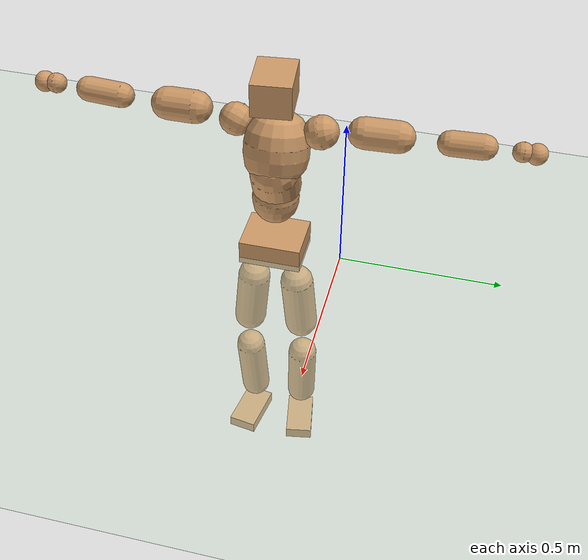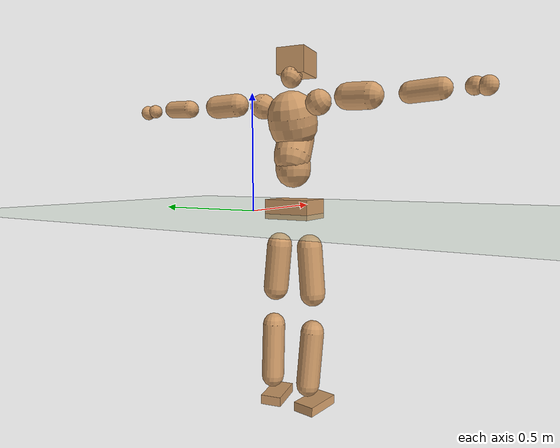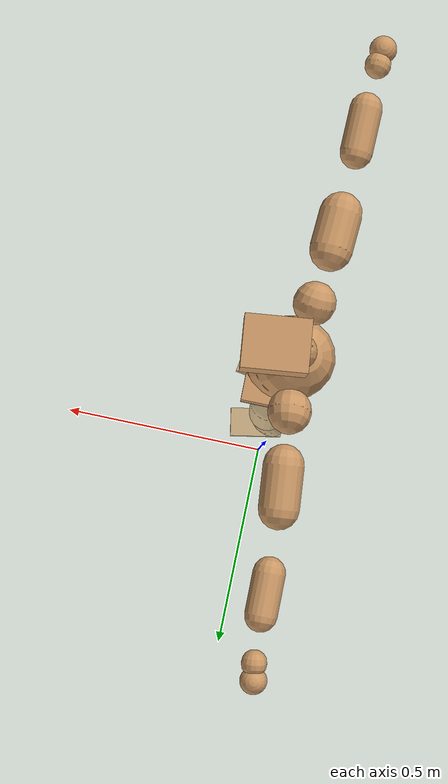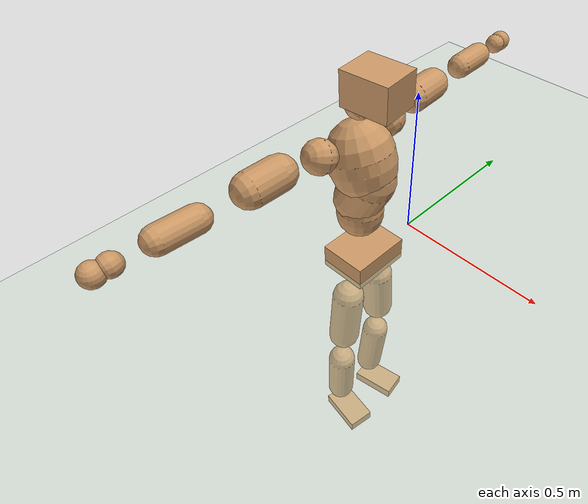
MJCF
<mujoco model="humanoid">
  <compiler coordinate="local" angle="radian"/>
  <default>
    <joint damping="0.0" armature="0.01" stiffness="0.0" limited="true"/>
    <geom conaffinity="1" condim="3" contype="7" margin="0.001" rgba="0.8 0.6 .4 1"/>
  </default>
  <asset>
    <texture type="skybox" builtin="gradient" rgb1=".4 .5 .6" rgb2="0 0 0" width="100" height="100"/>
    <texture builtin="flat" height="1278" mark="cross" markrgb="1 1 1" name="texgeom" random="0.01" rgb1="0.8 0.6 0.4" rgb2="0.8 0.6 0.4" type="cube" width="127"/>
    <texture builtin="checker" height="100" name="texplane" rgb1="0 0 0" rgb2="0.8 0.8 0.8" type="2d" width="100"/>
    <material name="MatPlane" reflectance="0.5" shininess="1" specular="1" texrepeat="60 60" texture="texplane"/>
    <material name="geom" texture="texgeom" texuniform="true"/>
  </asset>
  <worldbody>
    <light cutoff="100" diffuse="1 1 1" dir="-0 0 -1.3" directional="true" exponent="1" pos="0 0 1.3" specular=".1 .1 .1"/>
    <geom conaffinity="1" condim="3" name="floor" pos="0 0 0" rgba="0.8 0.9 0.8 1" size="100 100 .2" type="plane" material="MatPlane"/>
    <body name="Pelvis" pos="-0.0006 -0.2112 0.0291">
      <freejoint name="Pelvis"/>
      <geom type="box" contype="1" conaffinity="1" density="5359.374802" pos="-0.0050 -0.0000 -0.0121" size="0.0768 0.0964 0.04" quat="1.0000 0.0000 0.0000 0.0031" name="Pelvis"/>
      <body name="L_Hip" pos="-0.0066 0.0645 -0.0858">
        <joint name="L_Hip_x" type="hinge" pos="0 0 0" axis="1 0 0" stiffness="1600" damping="160" armature="0.02" range="-180.0000 180.0000"/>
        <joint name="L_Hip_y" type="hinge" pos="0 0 0" axis="0 1 0" stiffness="1600" damping="160" armature="0.02" range="-180.0000 180.0000"/>
        <joint name="L_Hip_z" type="hinge" pos="0 0 0" axis="0 0 1" stiffness="1600" damping="160" armature="0.02" range="-180.0000 180.0000"/>
        <geom type="capsule" contype="1" conaffinity="1" density="2040.816327" size="0.0527" fromto="-0.0022 0.0068 -0.0824 -0.0070 0.0223 -0.2681" name="L_Hip"/>
        <body name="L_Knee" pos="-0.0092 0.0291 -0.3505">
          <joint name="L_Knee_x" type="hinge" pos="0 0 0" axis="1 0 0" stiffness="1600" damping="160" armature="0.02" range="-180.0000 180.0000"/>
          <joint name="L_Knee_y" type="hinge" pos="0 0 0" axis="0 1 0" stiffness="1600" damping="160" armature="0.02" range="-180.0000 180.0000"/>
          <joint name="L_Knee_z" type="hinge" pos="0 0 0" axis="0 0 1" stiffness="1600" damping="160" armature="0.02" range="-180.0000 180.0000"/>
          <geom type="capsule" contype="1" conaffinity="1" density="1234.567901" size="0.0476" fromto="-0.0077 -0.0025 -0.0771 -0.0300 -0.0099 -0.2988" name="L_Knee"/>
          <body name="L_Ankle" pos="-0.0378 -0.0124 -0.376">
            <joint name="L_Ankle_x" type="hinge" pos="0 0 0" axis="1 0 0" stiffness="1600" damping="160" armature="0.02" range="-180.0000 180.0000"/>
            <joint name="L_Ankle_y" type="hinge" pos="0 0 0" axis="0 1 0" stiffness="1600" damping="160" armature="0.02" range="-180.0000 180.0000"/>
            <joint name="L_Ankle_z" type="hinge" pos="0 0 0" axis="0 0 1" stiffness="1600" damping="160" armature="0.02" range="-180.0000 180.0000"/>
            <geom type="box" contype="1" conaffinity="1" density="999.999915" pos="0.0564 0.0103 -0.0273" size="0.0795 0.044 0.02" quat="0.9959 0.0000 0.0000 0.0903" name="L_Ankle"/>
            <body name="L_Toe" pos="0.1128 0.0206 -0.0547">
              <joint name="L_Toe_x" type="hinge" pos="0 0 0" axis="1 0 0" stiffness="1000" damping="100" armature="0.02" range="-180.0000 180.0000"/>
              <joint name="L_Toe_y" type="hinge" pos="0 0 0" axis="0 1 0" stiffness="1000" damping="100" armature="0.02" range="-180.0000 180.0000"/>
              <joint name="L_Toe_z" type="hinge" pos="0 0 0" axis="0 0 1" stiffness="1000" damping="100" armature="0.02" range="-180.0000 180.0000"/>
              <geom type="box" contype="1" conaffinity="1" density="8268162.516083" pos="0.0000 0.0000 0.0272" size="0.0009 0.0022 0.001" quat="0.9953 0.0000 0.0000 0.0971" name="L_Toe"/>
            </body>
          </body>
        </body>
      </body>
      <body name="R_Hip" pos="-0.0027 -0.0623 -0.0858">
        <joint name="R_Hip_x" type="hinge" pos="0 0 0" axis="1 0 0" stiffness="1600" damping="160" armature="0.02" range="-180.0000 180.0000"/>
        <joint name="R_Hip_y" type="hinge" pos="0 0 0" axis="0 1 0" stiffness="1600" damping="160" armature="0.02" range="-180.0000 180.0000"/>
        <joint name="R_Hip_z" type="hinge" pos="0 0 0" axis="0 0 1" stiffness="1600" damping="160" armature="0.02" range="-180.0000 180.0000"/>
        <geom type="capsule" contype="1" conaffinity="1" density="2040.816327" size="0.0521" fromto="-0.0024 -0.0080 -0.0817 -0.0081 -0.0268 -0.2750" name="R_Hip"/>
        <body name="R_Knee" pos="-0.0105 -0.0348 -0.3567">
          <joint name="R_Knee_x" type="hinge" pos="0 0 0" axis="1 0 0" stiffness="1600" damping="160" armature="0.02" range="-180.0000 180.0000"/>
          <joint name="R_Knee_y" type="hinge" pos="0 0 0" axis="0 1 0" stiffness="1600" damping="160" armature="0.02" range="-180.0000 180.0000"/>
          <joint name="R_Knee_z" type="hinge" pos="0 0 0" axis="0 0 1" stiffness="1600" damping="160" armature="0.02" range="-180.0000 180.0000"/>
          <geom type="capsule" contype="1" conaffinity="1" density="1234.567901" size="0.0481" fromto="-0.0074 0.0032 -0.0777 -0.0284 0.0123 -0.2996" name="R_Knee"/>
          <body name="R_Ankle" pos="-0.0357 0.0155 -0.3772">
            <joint name="R_Ankle_x" type="hinge" pos="0 0 0" axis="1 0 0" stiffness="1600" damping="160" armature="0.02" range="-180.0000 180.0000"/>
            <joint name="R_Ankle_y" type="hinge" pos="0 0 0" axis="0 1 0" stiffness="1600" damping="160" armature="0.02" range="-180.0000 180.0000"/>
            <joint name="R_Ankle_z" type="hinge" pos="0 0 0" axis="0 0 1" stiffness="1600" damping="160" armature="0.02" range="-180.0000 180.0000"/>
            <geom type="box" contype="1" conaffinity="1" density="999.999923" pos="0.0584 -0.0090 -0.0225" size="0.0818 0.0463 0.0194" quat="0.9971 0.0000 0.0000 -0.0761" name="R_Ankle"/>
            <body name="R_Toe" pos="0.1167 -0.0179 -0.0451">
              <joint name="R_Toe_x" type="hinge" pos="0 0 0" axis="1 0 0" stiffness="1000" damping="100" armature="0.02" range="-180.0000 180.0000"/>
              <joint name="R_Toe_y" type="hinge" pos="0 0 0" axis="0 1 0" stiffness="1000" damping="100" armature="0.02" range="-180.0000 180.0000"/>
              <joint name="R_Toe_z" type="hinge" pos="0 0 0" axis="0 0 1" stiffness="1000" damping="100" armature="0.02" range="-180.0000 180.0000"/>
              <geom type="box" contype="1" conaffinity="1" density="7970938.676804" pos="0.0000 0.0000 0.0247" size="0.0009 0.0023 0.0011" quat="0.9978 0.0000 0.0000 -0.0666" name="R_Toe"/>
            </body>
          </body>
        </body>
      </body>
      <body name="Torso" pos="-0.0207 -0.0024 0.0988">
        <joint name="Torso_x" type="hinge" pos="0 0 0" axis="1 0 0" stiffness="2000" damping="200" armature="0.02" range="-180.0000 180.0000"/>
        <joint name="Torso_y" type="hinge" pos="0 0 0" axis="0 1 0" stiffness="2000" damping="200" armature="0.02" range="-180.0000 180.0000"/>
        <joint name="Torso_z" type="hinge" pos="0 0 0" axis="0 0 1" stiffness="2000" damping="200" armature="0.02" range="-180.0000 180.0000"/>
        <geom type="capsule" contype="1" conaffinity="1" density="2040.816327" size="0.0718" fromto="0.0013 0.0020 0.0717 0.0009 0.0013 0.0484" name="Torso"/>
        <body name="Spine" pos="0.0023 0.0033 0.1202">
          <joint name="Spine_x" type="hinge" pos="0 0 0" axis="1 0 0" stiffness="2000" damping="200" armature="0.02" range="-180.0000 180.0000"/>
          <joint name="Spine_y" type="hinge" pos="0 0 0" axis="0 1 0" stiffness="2000" damping="200" armature="0.02" range="-180.0000 180.0000"/>
          <joint name="Spine_z" type="hinge" pos="0 0 0" axis="0 0 1" stiffness="2000" damping="200" armature="0.02" range="-180.0000 180.0000"/>
          <geom type="capsule" contype="1" conaffinity="1" density="2040.816327" size="0.0756" fromto="0.0339 0.0038 0.0675 -0.0090 -0.0010 -0.0179" name="Spine"/>
          <body name="Chest" pos="0.0249 0.0028 0.0496">
            <joint name="Chest_x" type="hinge" pos="0 0 0" axis="1 0 0" stiffness="2000" damping="200" armature="0.02" range="-180.0000 180.0000"/>
            <joint name="Chest_y" type="hinge" pos="0 0 0" axis="0 1 0" stiffness="2000" damping="200" armature="0.02" range="-180.0000 180.0000"/>
            <joint name="Chest_z" type="hinge" pos="0 0 0" axis="0 0 1" stiffness="2000" damping="200" armature="0.02" range="-180.0000 180.0000"/>
            <geom type="capsule" contype="1" conaffinity="1" density="2040.816327" size="0.0995" fromto="-0.0305 -0.0007 0.0947 -0.0189 -0.0004 0.0585" name="Chest"/>
            <body name="Neck" pos="-0.0587 -0.0013 0.2161">
              <joint name="Neck_x" type="hinge" pos="0 0 0" axis="1 0 0" stiffness="1000" damping="100" armature="0.02" range="-180.0000 180.0000"/>
              <joint name="Neck_y" type="hinge" pos="0 0 0" axis="0 1 0" stiffness="1000" damping="100" armature="0.02" range="-180.0000 180.0000"/>
              <joint name="Neck_z" type="hinge" pos="0 0 0" axis="0 0 1" stiffness="1000" damping="100" armature="0.02" range="-180.0000 180.0000"/>
              <geom type="capsule" contype="1" conaffinity="1" density="1000" size="0.0424" fromto="0.0271 0.0021 0.0326 0.0245 0.0019 0.0296" name="Neck"/>
              <body name="Head" pos="0.0516 0.004 0.0622">
                <joint name="Head_x" type="hinge" pos="0 0 0" axis="1 0 0" stiffness="1000" damping="100" armature="0.02" range="-180.0000 180.0000"/>
                <joint name="Head_y" type="hinge" pos="0 0 0" axis="0 1 0" stiffness="1000" damping="100" armature="0.02" range="-180.0000 180.0000"/>
                <joint name="Head_z" type="hinge" pos="0 0 0" axis="0 0 1" stiffness="1000" damping="100" armature="0.02" range="-180.0000 180.0000"/>
                <geom type="box" contype="1" conaffinity="1" density="2249.999949" pos="0.0268 0.0030 0.0321" size="0.0736 0.059 0.0516" quat="0.9984 0.0000 0.0000 0.0557" name="Head"/>
              </body>
            </body>
            <body name="L_Thorax" pos="-0.0427 0.0807 0.1233">
              <joint name="L_Thorax_x" type="hinge" pos="0 0 0" axis="1 0 0" stiffness="1000" damping="100" armature="0.02" range="-180.0000 180.0000"/>
              <joint name="L_Thorax_y" type="hinge" pos="0 0 0" axis="0 1 0" stiffness="1000" damping="100" armature="0.02" range="-180.0000 180.0000"/>
              <joint name="L_Thorax_z" type="hinge" pos="0 0 0" axis="0 0 1" stiffness="1000" damping="100" armature="0.02" range="-180.0000 180.0000"/>
              <geom type="capsule" contype="1" conaffinity="1" density="1000" size="0.0508" fromto="-0.0039 0.0481 0.0157 -0.0035 0.0433 0.0141" name="L_Thorax"/>
              <body name="L_Shoulder" pos="-0.0075 0.0914 0.0298">
                <joint name="L_Shoulder_x" type="hinge" pos="0 0 0" axis="1 0 0" stiffness="1000" damping="100" armature="0.02" range="-720.0000 720.0000"/>
                <joint name="L_Shoulder_y" type="hinge" pos="0 0 0" axis="0 1 0" stiffness="1000" damping="100" armature="0.02" range="-720.0000 720.0000"/>
                <joint name="L_Shoulder_z" type="hinge" pos="0 0 0" axis="0 0 1" stiffness="1000" damping="100" armature="0.02" range="-720.0000 720.0000"/>
                <geom type="capsule" contype="1" conaffinity="1" density="1000" size="0.0477" fromto="-0.0072 0.0773 -0.0024 -0.0166 0.1776 -0.0055" name="L_Shoulder"/>
                <body name="L_Elbow" pos="-0.0238 0.2549 -0.0079">
                  <joint name="L_Elbow_x" type="hinge" pos="0 0 0" axis="1 0 0" stiffness="1000" damping="100" armature="0.02" range="-720.0000 720.0000"/>
                  <joint name="L_Elbow_y" type="hinge" pos="0 0 0" axis="0 1 0" stiffness="1000" damping="100" armature="0.02" range="-720.0000 720.0000"/>
                  <joint name="L_Elbow_z" type="hinge" pos="0 0 0" axis="0 0 1" stiffness="1000" damping="100" armature="0.02" range="-720.0000 720.0000"/>
                  <geom type="capsule" contype="1" conaffinity="1" density="1000" size="0.0374" fromto="-0.0004 0.0674 0.0024 -0.0010 0.1644 0.0058" name="L_Elbow"/>
                  <body name="L_Wrist" pos="-0.0014 0.2318 0.0081">
                    <joint name="L_Wrist_x" type="hinge" pos="0 0 0" axis="1 0 0" stiffness="600" damping="60" armature="0.02" range="-180.0000 180.0000"/>
                    <joint name="L_Wrist_y" type="hinge" pos="0 0 0" axis="0 1 0" stiffness="600" damping="60" armature="0.02" range="-180.0000 180.0000"/>
                    <joint name="L_Wrist_z" type="hinge" pos="0 0 0" axis="0 0 1" stiffness="600" damping="60" armature="0.02" range="-180.0000 180.0000"/>
                    <geom type="capsule" contype="1" conaffinity="1" density="1000" size="0.0295" fromto="-0.0062 0.0379 -0.0045 -0.0065 0.0399 -0.0047" name="L_Wrist"/>
                    <body name="L_Hand" pos="-0.0128 0.0778 -0.0092">
                      <joint name="L_Hand_x" type="hinge" pos="0 0 0" axis="1 0 0" stiffness="600" damping="60" armature="0.02" range="-180.0000 180.0000"/>
                      <joint name="L_Hand_y" type="hinge" pos="0 0 0" axis="0 1 0" stiffness="600" damping="60" armature="0.02" range="-180.0000 180.0000"/>
                      <joint name="L_Hand_z" type="hinge" pos="0 0 0" axis="0 0 1" stiffness="600" damping="60" armature="0.02" range="-180.0000 180.0000"/>
                      <geom type="sphere" contype="1" conaffinity="1" density="1000" size="0.0313" pos="0.0000 0.0000 0.0000" name="L_Hand"/>
                    </body>
                  </body>
                </body>
              </body>
            </body>
            <body name="R_Thorax" pos="-0.0468 -0.083 0.1202">
              <joint name="R_Thorax_x" type="hinge" pos="0 0 0" axis="1 0 0" stiffness="1000" damping="100" armature="0.02" range="-180.0000 180.0000"/>
              <joint name="R_Thorax_y" type="hinge" pos="0 0 0" axis="0 1 0" stiffness="1000" damping="100" armature="0.02" range="-180.0000 180.0000"/>
              <joint name="R_Thorax_z" type="hinge" pos="0 0 0" axis="0 0 1" stiffness="1000" damping="100" armature="0.02" range="-180.0000 180.0000"/>
              <geom type="capsule" contype="1" conaffinity="1" density="1000" size="0.0502" fromto="-0.0061 -0.0464 0.0161 -0.0063 -0.0482 0.0168" name="R_Thorax"/>
              <body name="R_Shoulder" pos="-0.0124 -0.0946 0.0329">
                <joint name="R_Shoulder_x" type="hinge" pos="0 0 0" axis="1 0 0" stiffness="1000" damping="100" armature="0.02" range="-720.0000 720.0000"/>
                <joint name="R_Shoulder_y" type="hinge" pos="0 0 0" axis="0 1 0" stiffness="1000" damping="100" armature="0.02" range="-720.0000 720.0000"/>
                <joint name="R_Shoulder_z" type="hinge" pos="0 0 0" axis="0 0 1" stiffness="1000" damping="100" armature="0.02" range="-720.0000 720.0000"/>
                <geom type="capsule" contype="1" conaffinity="1" density="1000" size="0.0502" fromto="-0.0052 -0.0799 -0.0043 -0.0110 -0.1695 -0.0092" name="R_Shoulder"/>
                <body name="R_Elbow" pos="-0.0161 -0.2493 -0.0135">
                  <joint name="R_Elbow_x" type="hinge" pos="0 0 0" axis="1 0 0" stiffness="1000" damping="100" armature="0.02" range="-720.0000 720.0000"/>
                  <joint name="R_Elbow_y" type="hinge" pos="0 0 0" axis="0 1 0" stiffness="1000" damping="100" armature="0.02" range="-720.0000 720.0000"/>
                  <joint name="R_Elbow_z" type="hinge" pos="0 0 0" axis="0 0 1" stiffness="1000" damping="100" armature="0.02" range="-720.0000 720.0000"/>
                  <geom type="capsule" contype="1" conaffinity="1" density="1000" size="0.0382" fromto="-0.0014 -0.0682 0.0026 -0.0036 -0.1745 0.0066" name="R_Elbow"/>
                  <body name="R_Wrist" pos="-0.0051 -0.2426 0.0091">
                    <joint name="R_Wrist_x" type="hinge" pos="0 0 0" axis="1 0 0" stiffness="600" damping="60" armature="0.02" range="-180.0000 180.0000"/>
                    <joint name="R_Wrist_y" type="hinge" pos="0 0 0" axis="0 1 0" stiffness="600" damping="60" armature="0.02" range="-180.0000 180.0000"/>
                    <joint name="R_Wrist_z" type="hinge" pos="0 0 0" axis="0 0 1" stiffness="600" damping="60" armature="0.02" range="-180.0000 180.0000"/>
                    <geom type="capsule" contype="1" conaffinity="1" density="1000" size="0.0308" fromto="-0.0050 -0.0392 -0.0035 -0.0052 -0.0412 -0.0037" name="R_Wrist"/>
                    <body name="R_Hand" pos="-0.0102 -0.0804 -0.0072">
                      <joint name="R_Hand_x" type="hinge" pos="0 0 0" axis="1 0 0" stiffness="600" damping="60" armature="0.02" range="-180.0000 180.0000"/>
                      <joint name="R_Hand_y" type="hinge" pos="0 0 0" axis="0 1 0" stiffness="600" damping="60" armature="0.02" range="-180.0000 180.0000"/>
                      <joint name="R_Hand_z" type="hinge" pos="0 0 0" axis="0 0 1" stiffness="600" damping="60" armature="0.02" range="-180.0000 180.0000"/>
                      <geom type="sphere" contype="1" conaffinity="1" density="1000" size="0.0323" pos="0.0000 0.0000 0.0000" name="R_Hand"/>
                    </body>
                  </body>
                </body>
              </body>
            </body>
          </body>
        </body>
      </body>
    </body>
  </worldbody>
  <actuator>
    <motor name="L_Hip_x" joint="L_Hip_x" gear="500"/>
    <motor name="L_Hip_y" joint="L_Hip_y" gear="500"/>
    <motor name="L_Hip_z" joint="L_Hip_z" gear="500"/>
    <motor name="L_Knee_x" joint="L_Knee_x" gear="500"/>
    <motor name="L_Knee_y" joint="L_Knee_y" gear="500"/>
    <motor name="L_Knee_z" joint="L_Knee_z" gear="500"/>
    <motor name="L_Ankle_x" joint="L_Ankle_x" gear="500"/>
    <motor name="L_Ankle_y" joint="L_Ankle_y" gear="500"/>
    <motor name="L_Ankle_z" joint="L_Ankle_z" gear="500"/>
    <motor name="L_Toe_x" joint="L_Toe_x" gear="500"/>
    <motor name="L_Toe_y" joint="L_Toe_y" gear="500"/>
    <motor name="L_Toe_z" joint="L_Toe_z" gear="500"/>
    <motor name="R_Hip_x" joint="R_Hip_x" gear="500"/>
    <motor name="R_Hip_y" joint="R_Hip_y" gear="500"/>
    <motor name="R_Hip_z" joint="R_Hip_z" gear="500"/>
    <motor name="R_Knee_x" joint="R_Knee_x" gear="500"/>
    <motor name="R_Knee_y" joint="R_Knee_y" gear="500"/>
    <motor name="R_Knee_z" joint="R_Knee_z" gear="500"/>
    <motor name="R_Ankle_x" joint="R_Ankle_x" gear="500"/>
    <motor name="R_Ankle_y" joint="R_Ankle_y" gear="500"/>
    <motor name="R_Ankle_z" joint="R_Ankle_z" gear="500"/>
    <motor name="R_Toe_x" joint="R_Toe_x" gear="500"/>
    <motor name="R_Toe_y" joint="R_Toe_y" gear="500"/>
    <motor name="R_Toe_z" joint="R_Toe_z" gear="500"/>
    <motor name="Torso_x" joint="Torso_x" gear="500"/>
    <motor name="Torso_y" joint="Torso_y" gear="500"/>
    <motor name="Torso_z" joint="Torso_z" gear="500"/>
    <motor name="Spine_x" joint="Spine_x" gear="500"/>
    <motor name="Spine_y" joint="Spine_y" gear="500"/>
    <motor name="Spine_z" joint="Spine_z" gear="500"/>
    <motor name="Chest_x" joint="Chest_x" gear="500"/>
    <motor name="Chest_y" joint="Chest_y" gear="500"/>
    <motor name="Chest_z" joint="Chest_z" gear="500"/>
    <motor name="Neck_x" joint="Neck_x" gear="500"/>
    <motor name="Neck_y" joint="Neck_y" gear="500"/>
    <motor name="Neck_z" joint="Neck_z" gear="500"/>
    <motor name="Head_x" joint="Head_x" gear="500"/>
    <motor name="Head_y" joint="Head_y" gear="500"/>
    <motor name="Head_z" joint="Head_z" gear="500"/>
    <motor name="L_Thorax_x" joint="L_Thorax_x" gear="500"/>
    <motor name="L_Thorax_y" joint="L_Thorax_y" gear="500"/>
    <motor name="L_Thorax_z" joint="L_Thorax_z" gear="500"/>
    <motor name="L_Shoulder_x" joint="L_Shoulder_x" gear="500"/>
    <motor name="L_Shoulder_y" joint="L_Shoulder_y" gear="500"/>
    <motor name="L_Shoulder_z" joint="L_Shoulder_z" gear="500"/>
    <motor name="L_Elbow_x" joint="L_Elbow_x" gear="500"/>
    <motor name="L_Elbow_y" joint="L_Elbow_y" gear="500"/>
    <motor name="L_Elbow_z" joint="L_Elbow_z" gear="500"/>
    <motor name="L_Wrist_x" joint="L_Wrist_x" gear="500"/>
    <motor name="L_Wrist_y" joint="L_Wrist_y" gear="500"/>
    <motor name="L_Wrist_z" joint="L_Wrist_z" gear="500"/>
    <motor name="L_Hand_x" joint="L_Hand_x" gear="500"/>
    <motor name="L_Hand_y" joint="L_Hand_y" gear="500"/>
    <motor name="L_Hand_z" joint="L_Hand_z" gear="500"/>
    <motor name="R_Thorax_x" joint="R_Thorax_x" gear="500"/>
    <motor name="R_Thorax_y" joint="R_Thorax_y" gear="500"/>
    <motor name="R_Thorax_z" joint="R_Thorax_z" gear="500"/>
    <motor name="R_Shoulder_x" joint="R_Shoulder_x" gear="500"/>
    <motor name="R_Shoulder_y" joint="R_Shoulder_y" gear="500"/>
    <motor name="R_Shoulder_z" joint="R_Shoulder_z" gear="500"/>
    <motor name="R_Elbow_x" joint="R_Elbow_x" gear="500"/>
    <motor name="R_Elbow_y" joint="R_Elbow_y" gear="500"/>
    <motor name="R_Elbow_z" joint="R_Elbow_z" gear="500"/>
    <motor name="R_Wrist_x" joint="R_Wrist_x" gear="500"/>
    <motor name="R_Wrist_y" joint="R_Wrist_y" gear="500"/>
    <motor name="R_Wrist_z" joint="R_Wrist_z" gear="500"/>
    <motor name="R_Hand_x" joint="R_Hand_x" gear="500"/>
    <motor name="R_Hand_y" joint="R_Hand_y" gear="500"/>
    <motor name="R_Hand_z" joint="R_Hand_z" gear="500"/>
  </actuator>
  <contact>
    <exclude body1="Torso" body2="Chest"/>
    <exclude body1="Head" body2="Chest"/>
    <exclude body1="R_Knee" body2="R_Toe"/>
    <exclude body1="R_Knee" body2="L_Ankle"/>
    <exclude body1="R_Knee" body2="L_Toe"/>
    <exclude body1="L_Knee" body2="L_Toe"/>
    <exclude body1="L_Knee" body2="R_Ankle"/>
    <exclude body1="L_Knee" body2="R_Toe"/>
    <exclude body1="L_Shoulder" body2="Chest"/>
    <exclude body1="R_Shoulder" body2="Chest"/>
  </contact>
  <sensor/>
  <size njmax="700" nconmax="700"/>
</mujoco>
